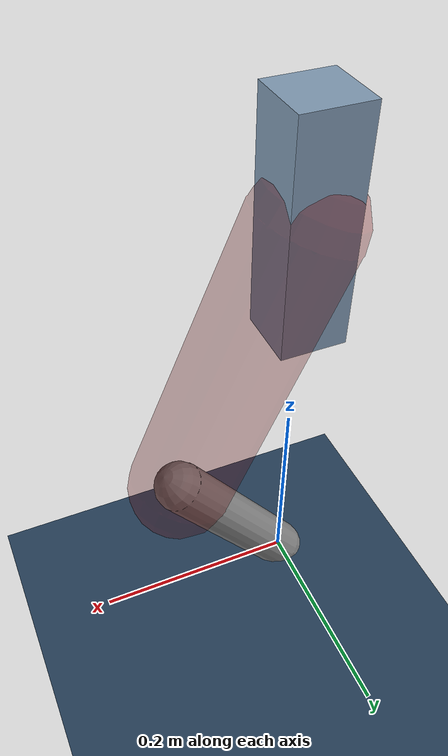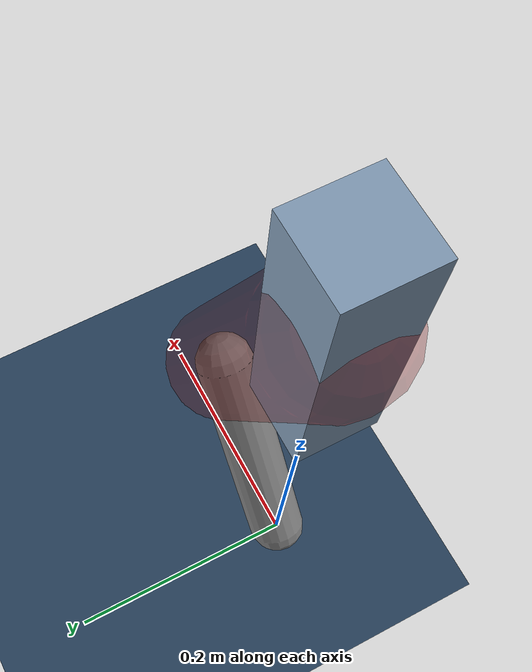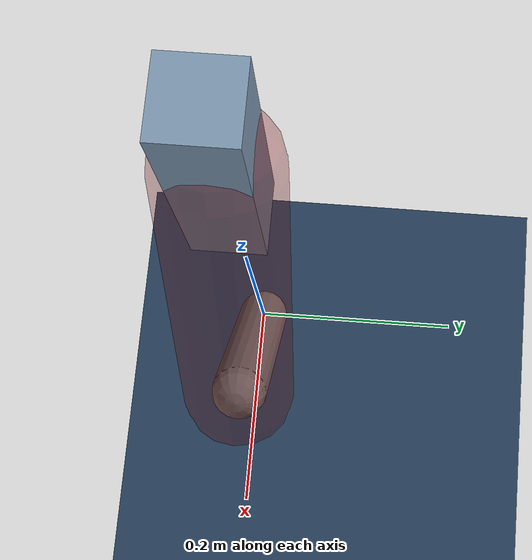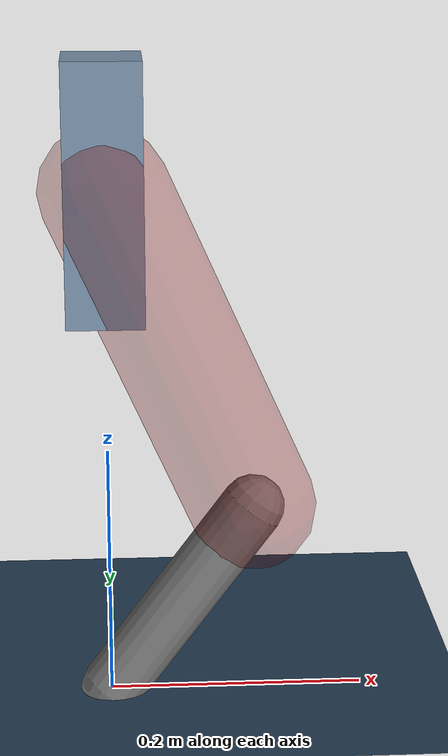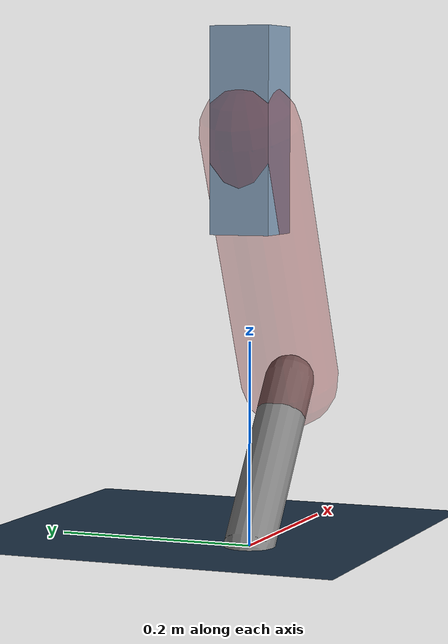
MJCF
<mujoco model="Hopper2D">
	<compiler inertiafromgeom="true" angle="radian" />
	<option timestep="0.001" integrator="implicit" cone="elliptic" solver="Newton" tolerance="1e-10" />

	<default>
		<geom contype="1" conaffinity="1" condim="3" friction="2 0.005 0.0001" solref="0.005 1" />
		<joint limited="true" damping="0.1" />
	</default>

	<asset>
		<texture name="skybox" type="skybox" builtin="gradient" rgb1=".4 .6 .8" rgb2="0 0 0" width="800" height="800" />
		<texture name="grid" type="2d" builtin="checker" rgb1=".1 .2 .3" rgb2=".2 .3 .4" width="300" height="300" mark="edge" markrgb=".2 .3 .4" />
		<material name="ground" texture="grid" texrepeat="1 1" texuniform="true" reflectance="0.1" />
		<material name="leg" rgba="0.5 0.6 0.7 1" />
	</asset>

	<worldbody>

		<geom name="floor" type="plane" size="5 5 0.25" material="ground" />

		<light directional="false" diffuse="0.8 0.8 0.8" specular="0.3 0.3 0.3" pos="0 0 2" dir="0 0 -1" />
		<light mode="targetbodycom" target="base" directional="false" diffuse="0.8 0.8 0.8" specular="0.3 0.3 0.3" pos="0 0 2" dir="0 0 -1" />

		<camera name="fixed" pos="0 -2 1" xyaxes="1 0 0 0 0 1" />
		<camera name="tracking" mode="trackcom" pos="0 -3 1" />

		<body name="root" pos="0 0 0.40508283392448247">
			<joint name="slide_x" type="slide" axis="1 0 0" range="-100 100" />
			<joint name="slide_z" type="slide" axis="0 0 1" range="0 10" />

			<body name="base" pos="0 0 0">
				<geom name="torso" type="box" size="0.03 0.03 0.1" mass="2.825" material="leg" />

				<body name="link1" pos="0 0 0" euler="0 1.1491379824812207 0">
					<joint type="hinge" axis="0 -1 0" pos="0 0 0" name="hinge1" limited="true" range="-3.14 3.14" stiffness="0" damping="0.1" />
					<geom name="thigh" type="capsule" fromto="0 0 0 0.27691036602248836 0 0" size="0.05" rgba="0.5 0 0 0.3" mass="0.9269579882607185" />

					<body name="link2" pos="0.27691036602248836 0 0" euler="0 1.0609992922326572 0">
						<joint type="hinge" axis="0 -1 0" pos="0 0 0" name="hinge2" limited="true" range="-3.14 3.14" stiffness="0" damping="0.1" />
						<geom name="shank" type="capsule" fromto="0 0 0 0.18994229951285088 0 0" size="0.025" mass="0.39235383961028075" />

					</body>
				</body>
			</body>
		</body>
	</worldbody>

	<actuator>
		<motor name="torque1" joint="hinge1" ctrlrange="-72.94011200648892 72.94011200648892" ctrllimited="true" gear="1" />
		<motor name="torque2" joint="hinge2" ctrlrange="-75.69757304721463 75.69757304721463" ctrllimited="true" gear="1" />
	</actuator>
</mujoco>
